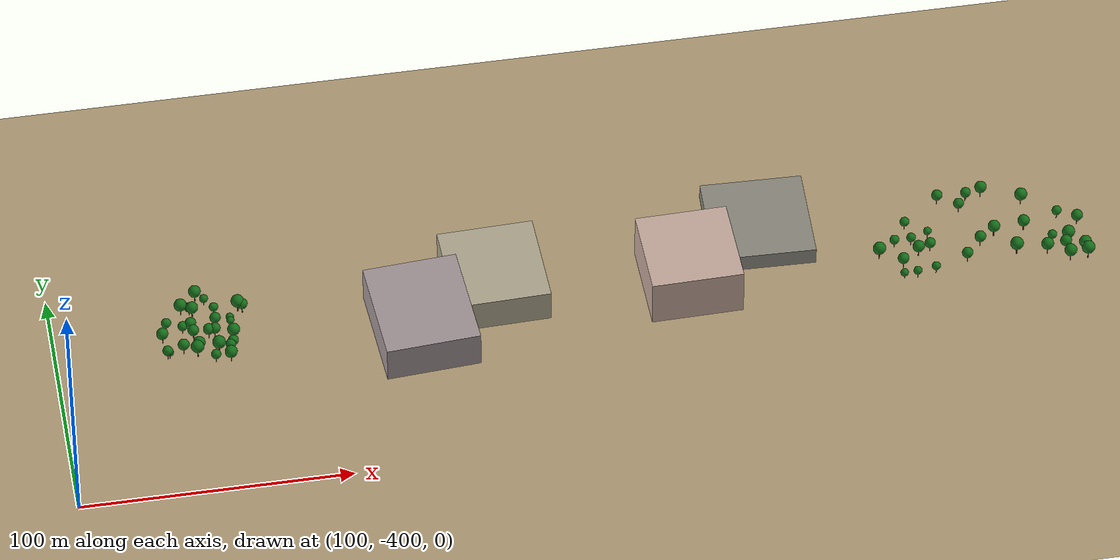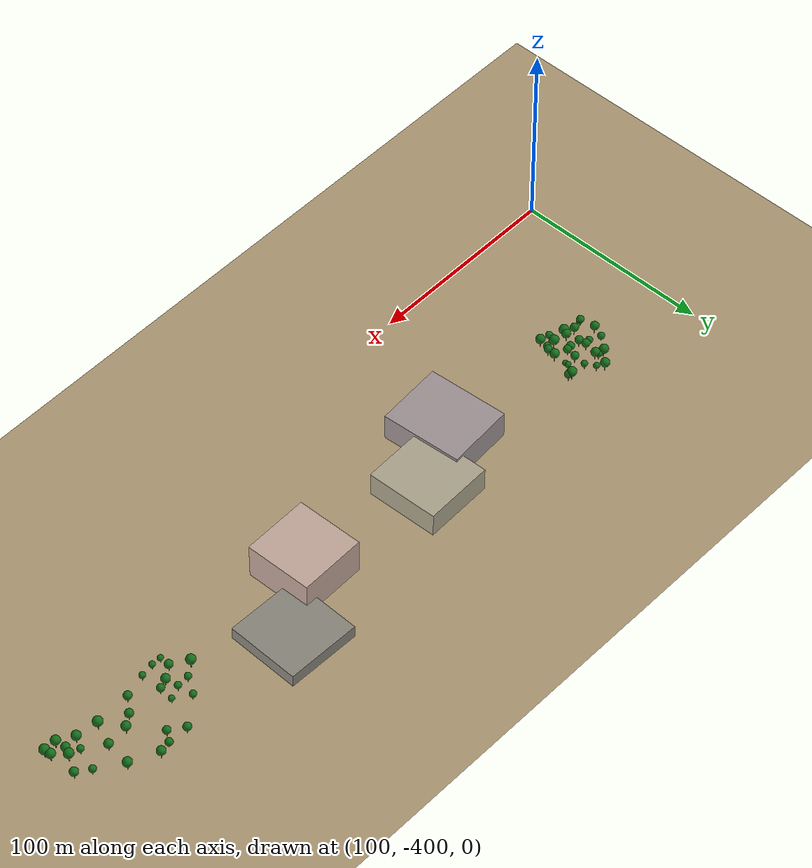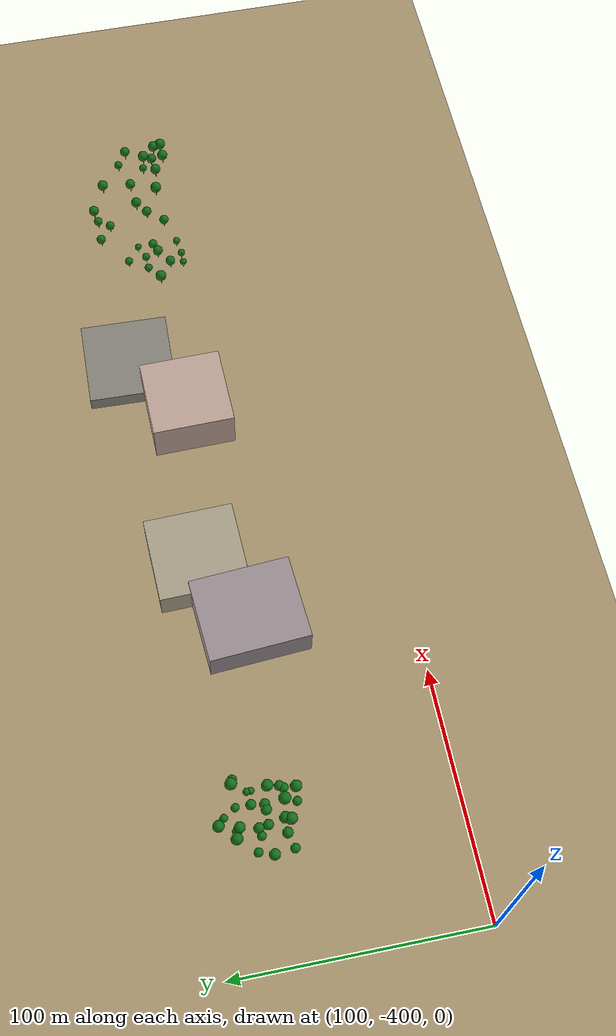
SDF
<sdf version="1.9">
 <world name="crossroad_world">
  <model name="ground_plane">
   <static>true</static>
   <pose>0 0 -0.05 0 0 0</pose>
   <link name="link">
    <collision name="collision">
     <geometry><plane><normal>0 0 1</normal><size>10000 10000</size></plane></geometry>
    </collision>
    <visual name="visual">
     <geometry><plane><normal>0 0 1</normal><size>15000 15000</size></plane></geometry>
     <material><ambient>0.68 0.60 0.45 1</ambient><diffuse>0.68 0.60 0.45 1</diffuse></material>
    </visual>
   </link>
  </model>
  <model name="tree_67">
   <static>true</static>
   <pose>474.937 -330.196 0 0 0 0</pose>
   <link name="link">
    <visual name="trunk">
     <pose>0 0 2.004 0 0 0</pose>
     <geometry><cylinder><radius>0.175</radius><length>4.008</length></cylinder></geometry>
     <material><ambient>0.38 0.22 0.08 1</ambient><diffuse>0.38 0.22 0.08 1</diffuse></material>
    </visual>
    <visual name="canopy">
     <pose>0 0 5.554 0 0 0</pose>
     <geometry><sphere><radius>2.380</radius></sphere></geometry>
     <material><ambient>0.08 0.44 0.10 1</ambient><diffuse>0.08 0.44 0.10 1</diffuse></material>
    </visual>
    <collision name="col">
     <pose>0 0 2.004 0 0 0</pose>
     <geometry><cylinder><radius>0.175</radius><length>4.008</length></cylinder></geometry>
    </collision>
   </link>
  </model>
  <model name="tree_68">
   <static>true</static>
   <pose>466.240 -334.672 0 0 0 0</pose>
   <link name="link">
    <visual name="trunk">
     <pose>0 0 1.931 0 0 0</pose>
     <geometry><cylinder><radius>0.169</radius><length>3.862</length></cylinder></geometry>
     <material><ambient>0.38 0.22 0.08 1</ambient><diffuse>0.38 0.22 0.08 1</diffuse></material>
    </visual>
    <visual name="canopy">
     <pose>0 0 5.352 0 0 0</pose>
     <geometry><sphere><radius>2.293</radius></sphere></geometry>
     <material><ambient>0.08 0.44 0.10 1</ambient><diffuse>0.08 0.44 0.10 1</diffuse></material>
    </visual>
    <collision name="col">
     <pose>0 0 1.931 0 0 0</pose>
     <geometry><cylinder><radius>0.169</radius><length>3.862</length></cylinder></geometry>
    </collision>
   </link>
  </model>
  <model name="tree_69">
   <static>true</static>
   <pose>469.174 -329.143 0 0 0 0</pose>
   <link name="link">
    <visual name="trunk">
     <pose>0 0 1.426 0 0 0</pose>
     <geometry><cylinder><radius>0.125</radius><length>2.852</length></cylinder></geometry>
     <material><ambient>0.38 0.22 0.08 1</ambient><diffuse>0.38 0.22 0.08 1</diffuse></material>
    </visual>
    <visual name="canopy">
     <pose>0 0 3.953 0 0 0</pose>
     <geometry><sphere><radius>1.694</radius></sphere></geometry>
     <material><ambient>0.08 0.44 0.10 1</ambient><diffuse>0.08 0.44 0.10 1</diffuse></material>
    </visual>
    <collision name="col">
     <pose>0 0 1.426 0 0 0</pose>
     <geometry><cylinder><radius>0.125</radius><length>2.852</length></cylinder></geometry>
    </collision>
   </link>
  </model>
  <model name="tree_70">
   <static>true</static>
   <pose>480.124 -335.793 0 0 0 0</pose>
   <link name="link">
    <visual name="trunk">
     <pose>0 0 1.926 0 0 0</pose>
     <geometry><cylinder><radius>0.169</radius><length>3.851</length></cylinder></geometry>
     <material><ambient>0.38 0.22 0.08 1</ambient><diffuse>0.38 0.22 0.08 1</diffuse></material>
    </visual>
    <visual name="canopy">
     <pose>0 0 5.338 0 0 0</pose>
     <geometry><sphere><radius>2.287</radius></sphere></geometry>
     <material><ambient>0.08 0.44 0.10 1</ambient><diffuse>0.08 0.44 0.10 1</diffuse></material>
    </visual>
    <collision name="col">
     <pose>0 0 1.926 0 0 0</pose>
     <geometry><cylinder><radius>0.169</radius><length>3.851</length></cylinder></geometry>
    </collision>
   </link>
  </model>
  <model name="tree_74">
   <static>true</static>
   <pose>473.034 -317.838 0 0 0 0</pose>
   <link name="link">
    <visual name="trunk">
     <pose>0 0 1.498 0 0 0</pose>
     <geometry><cylinder><radius>0.131</radius><length>2.996</length></cylinder></geometry>
     <material><ambient>0.38 0.22 0.08 1</ambient><diffuse>0.38 0.22 0.08 1</diffuse></material>
    </visual>
    <visual name="canopy">
     <pose>0 0 4.152 0 0 0</pose>
     <geometry><sphere><radius>1.779</radius></sphere></geometry>
     <material><ambient>0.08 0.44 0.10 1</ambient><diffuse>0.08 0.44 0.10 1</diffuse></material>
    </visual>
    <collision name="col">
     <pose>0 0 1.498 0 0 0</pose>
     <geometry><cylinder><radius>0.131</radius><length>2.996</length></cylinder></geometry>
    </collision>
   </link>
  </model>
  <model name="tree_78">
   <static>true</static>
   <pose>455.065 -333.043 0 0 0 0</pose>
   <link name="link">
    <visual name="trunk">
     <pose>0 0 2.051 0 0 0</pose>
     <geometry><cylinder><radius>0.179</radius><length>4.101</length></cylinder></geometry>
     <material><ambient>0.38 0.22 0.08 1</ambient><diffuse>0.38 0.22 0.08 1</diffuse></material>
    </visual>
    <visual name="canopy">
     <pose>0 0 5.684 0 0 0</pose>
     <geometry><sphere><radius>2.435</radius></sphere></geometry>
     <material><ambient>0.08 0.44 0.10 1</ambient><diffuse>0.08 0.44 0.10 1</diffuse></material>
    </visual>
    <collision name="col">
     <pose>0 0 2.051 0 0 0</pose>
     <geometry><cylinder><radius>0.179</radius><length>4.101</length></cylinder></geometry>
    </collision>
   </link>
  </model>
  <model name="tree_79">
   <static>true</static>
   <pose>473.966 -339.221 0 0 0 0</pose>
   <link name="link">
    <visual name="trunk">
     <pose>0 0 1.957 0 0 0</pose>
     <geometry><cylinder><radius>0.171</radius><length>3.914</length></cylinder></geometry>
     <material><ambient>0.38 0.22 0.08 1</ambient><diffuse>0.38 0.22 0.08 1</diffuse></material>
    </visual>
    <visual name="canopy">
     <pose>0 0 5.424 0 0 0</pose>
     <geometry><sphere><radius>2.324</radius></sphere></geometry>
     <material><ambient>0.08 0.44 0.10 1</ambient><diffuse>0.08 0.44 0.10 1</diffuse></material>
    </visual>
    <collision name="col">
     <pose>0 0 1.957 0 0 0</pose>
     <geometry><cylinder><radius>0.171</radius><length>3.914</length></cylinder></geometry>
    </collision>
   </link>
  </model>
  <model name="tree_80">
   <static>true</static>
   <pose>459.842 -321.681 0 0 0 0</pose>
   <link name="link">
    <visual name="trunk">
     <pose>0 0 1.837 0 0 0</pose>
     <geometry><cylinder><radius>0.161</radius><length>3.675</length></cylinder></geometry>
     <material><ambient>0.38 0.22 0.08 1</ambient><diffuse>0.38 0.22 0.08 1</diffuse></material>
    </visual>
    <visual name="canopy">
     <pose>0 0 5.093 0 0 0</pose>
     <geometry><sphere><radius>2.182</radius></sphere></geometry>
     <material><ambient>0.08 0.44 0.10 1</ambient><diffuse>0.08 0.44 0.10 1</diffuse></material>
    </visual>
    <collision name="col">
     <pose>0 0 1.837 0 0 0</pose>
     <geometry><cylinder><radius>0.161</radius><length>3.675</length></cylinder></geometry>
    </collision>
   </link>
  </model>
  <model name="tree_82">
   <static>true</static>
   <pose>480.581 -339.117 0 0 0 0</pose>
   <link name="link">
    <visual name="trunk">
     <pose>0 0 2.051 0 0 0</pose>
     <geometry><cylinder><radius>0.179</radius><length>4.102</length></cylinder></geometry>
     <material><ambient>0.38 0.22 0.08 1</ambient><diffuse>0.38 0.22 0.08 1</diffuse></material>
    </visual>
    <visual name="canopy">
     <pose>0 0 5.686 0 0 0</pose>
     <geometry><sphere><radius>2.436</radius></sphere></geometry>
     <material><ambient>0.08 0.44 0.10 1</ambient><diffuse>0.08 0.44 0.10 1</diffuse></material>
    </visual>
    <collision name="col">
     <pose>0 0 2.051 0 0 0</pose>
     <geometry><cylinder><radius>0.179</radius><length>4.102</length></cylinder></geometry>
    </collision>
   </link>
  </model>
  <model name="tree_89">
   <static>true</static>
   <pose>473.282 -333.863 0 0 0 0</pose>
   <link name="link">
    <visual name="trunk">
     <pose>0 0 1.792 0 0 0</pose>
     <geometry><cylinder><radius>0.157</radius><length>3.584</length></cylinder></geometry>
     <material><ambient>0.38 0.22 0.08 1</ambient><diffuse>0.38 0.22 0.08 1</diffuse></material>
    </visual>
    <visual name="canopy">
     <pose>0 0 4.967 0 0 0</pose>
     <geometry><sphere><radius>2.128</radius></sphere></geometry>
     <material><ambient>0.08 0.44 0.10 1</ambient><diffuse>0.08 0.44 0.10 1</diffuse></material>
    </visual>
    <collision name="col">
     <pose>0 0 1.792 0 0 0</pose>
     <geometry><cylinder><radius>0.157</radius><length>3.584</length></cylinder></geometry>
    </collision>
   </link>
  </model>
  <model name="tree_90">
   <static>true</static>
   <pose>479.800 -322.062 0 0 0 0</pose>
   <link name="link">
    <visual name="trunk">
     <pose>0 0 1.792 0 0 0</pose>
     <geometry><cylinder><radius>0.157</radius><length>3.583</length></cylinder></geometry>
     <material><ambient>0.38 0.22 0.08 1</ambient><diffuse>0.38 0.22 0.08 1</diffuse></material>
    </visual>
    <visual name="canopy">
     <pose>0 0 4.966 0 0 0</pose>
     <geometry><sphere><radius>2.128</radius></sphere></geometry>
     <material><ambient>0.08 0.44 0.10 1</ambient><diffuse>0.08 0.44 0.10 1</diffuse></material>
    </visual>
    <collision name="col">
     <pose>0 0 1.792 0 0 0</pose>
     <geometry><cylinder><radius>0.157</radius><length>3.583</length></cylinder></geometry>
    </collision>
   </link>
  </model>
  <model name="tree_91">
   <static>true</static>
   <pose>436.463 -333.862 0 0 0 0</pose>
   <link name="link">
    <visual name="trunk">
     <pose>0 0 1.730 0 0 0</pose>
     <geometry><cylinder><radius>0.151</radius><length>3.460</length></cylinder></geometry>
     <material><ambient>0.38 0.22 0.08 1</ambient><diffuse>0.38 0.22 0.08 1</diffuse></material>
    </visual>
    <visual name="canopy">
     <pose>0 0 4.796 0 0 0</pose>
     <geometry><sphere><radius>2.055</radius></sphere></geometry>
     <material><ambient>0.08 0.44 0.10 1</ambient><diffuse>0.08 0.44 0.10 1</diffuse></material>
    </visual>
    <collision name="col">
     <pose>0 0 1.730 0 0 0</pose>
     <geometry><cylinder><radius>0.151</radius><length>3.460</length></cylinder></geometry>
    </collision>
   </link>
  </model>
  <model name="tree_94">
   <static>true</static>
   <pose>424.090 -337.579 0 0 0 0</pose>
   <link name="link">
    <visual name="trunk">
     <pose>0 0 1.356 0 0 0</pose>
     <geometry><cylinder><radius>0.119</radius><length>2.712</length></cylinder></geometry>
     <material><ambient>0.38 0.22 0.08 1</ambient><diffuse>0.38 0.22 0.08 1</diffuse></material>
    </visual>
    <visual name="canopy">
     <pose>0 0 3.758 0 0 0</pose>
     <geometry><sphere><radius>1.610</radius></sphere></geometry>
     <material><ambient>0.08 0.44 0.10 1</ambient><diffuse>0.08 0.44 0.10 1</diffuse></material>
    </visual>
    <collision name="col">
     <pose>0 0 1.356 0 0 0</pose>
     <geometry><cylinder><radius>0.119</radius><length>2.712</length></cylinder></geometry>
    </collision>
   </link>
  </model>
  <model name="tree_95">
   <static>true</static>
   <pose>448.484 -322.743 0 0 0 0</pose>
   <link name="link">
    <visual name="trunk">
     <pose>0 0 1.880 0 0 0</pose>
     <geometry><cylinder><radius>0.165</radius><length>3.760</length></cylinder></geometry>
     <material><ambient>0.38 0.22 0.08 1</ambient><diffuse>0.38 0.22 0.08 1</diffuse></material>
    </visual>
    <visual name="canopy">
     <pose>0 0 5.211 0 0 0</pose>
     <geometry><sphere><radius>2.233</radius></sphere></geometry>
     <material><ambient>0.08 0.44 0.10 1</ambient><diffuse>0.08 0.44 0.10 1</diffuse></material>
    </visual>
    <collision name="col">
     <pose>0 0 1.880 0 0 0</pose>
     <geometry><cylinder><radius>0.165</radius><length>3.760</length></cylinder></geometry>
    </collision>
   </link>
  </model>
  <model name="tree_96">
   <static>true</static>
   <pose>423.887 -326.579 0 0 0 0</pose>
   <link name="link">
    <visual name="trunk">
     <pose>0 0 1.635 0 0 0</pose>
     <geometry><cylinder><radius>0.143</radius><length>3.270</length></cylinder></geometry>
     <material><ambient>0.38 0.22 0.08 1</ambient><diffuse>0.38 0.22 0.08 1</diffuse></material>
    </visual>
    <visual name="canopy">
     <pose>0 0 4.532 0 0 0</pose>
     <geometry><sphere><radius>1.941</radius></sphere></geometry>
     <material><ambient>0.08 0.44 0.10 1</ambient><diffuse>0.08 0.44 0.10 1</diffuse></material>
    </visual>
    <collision name="col">
     <pose>0 0 1.635 0 0 0</pose>
     <geometry><cylinder><radius>0.143</radius><length>3.270</length></cylinder></geometry>
    </collision>
   </link>
  </model>
  <model name="tree_97">
   <static>true</static>
   <pose>419.285 -328.193 0 0 0 0</pose>
   <link name="link">
    <visual name="trunk">
     <pose>0 0 1.864 0 0 0</pose>
     <geometry><cylinder><radius>0.163</radius><length>3.728</length></cylinder></geometry>
     <material><ambient>0.38 0.22 0.08 1</ambient><diffuse>0.38 0.22 0.08 1</diffuse></material>
    </visual>
    <visual name="canopy">
     <pose>0 0 5.167 0 0 0</pose>
     <geometry><sphere><radius>2.213</radius></sphere></geometry>
     <material><ambient>0.08 0.44 0.10 1</ambient><diffuse>0.08 0.44 0.10 1</diffuse></material>
    </visual>
    <collision name="col">
     <pose>0 0 1.864 0 0 0</pose>
     <geometry><cylinder><radius>0.163</radius><length>3.728</length></cylinder></geometry>
    </collision>
   </link>
  </model>
  <model name="tree_98">
   <static>true</static>
   <pose>447.421 -302.666 0 0 0 0</pose>
   <link name="link">
    <visual name="trunk">
     <pose>0 0 1.869 0 0 0</pose>
     <geometry><cylinder><radius>0.164</radius><length>3.737</length></cylinder></geometry>
     <material><ambient>0.38 0.22 0.08 1</ambient><diffuse>0.38 0.22 0.08 1</diffuse></material>
    </visual>
    <visual name="canopy">
     <pose>0 0 5.180 0 0 0</pose>
     <geometry><sphere><radius>2.219</radius></sphere></geometry>
     <material><ambient>0.08 0.44 0.10 1</ambient><diffuse>0.08 0.44 0.10 1</diffuse></material>
    </visual>
    <collision name="col">
     <pose>0 0 1.869 0 0 0</pose>
     <geometry><cylinder><radius>0.164</radius><length>3.737</length></cylinder></geometry>
    </collision>
   </link>
  </model>
  <model name="tree_100">
   <static>true</static>
   <pose>404.798 -327.288 0 0 0 0</pose>
   <link name="link">
    <visual name="trunk">
     <pose>0 0 2.013 0 0 0</pose>
     <geometry><cylinder><radius>0.176</radius><length>4.027</length></cylinder></geometry>
     <material><ambient>0.38 0.22 0.08 1</ambient><diffuse>0.38 0.22 0.08 1</diffuse></material>
    </visual>
    <visual name="canopy">
     <pose>0 0 5.580 0 0 0</pose>
     <geometry><sphere><radius>2.391</radius></sphere></geometry>
     <material><ambient>0.08 0.44 0.10 1</ambient><diffuse>0.08 0.44 0.10 1</diffuse></material>
    </visual>
    <collision name="col">
     <pose>0 0 2.013 0 0 0</pose>
     <geometry><cylinder><radius>0.176</radius><length>4.027</length></cylinder></geometry>
    </collision>
   </link>
  </model>
  <model name="tree_101">
   <static>true</static>
   <pose>430.835 -303.702 0 0 0 0</pose>
   <link name="link">
    <visual name="trunk">
     <pose>0 0 1.697 0 0 0</pose>
     <geometry><cylinder><radius>0.148</radius><length>3.394</length></cylinder></geometry>
     <material><ambient>0.38 0.22 0.08 1</ambient><diffuse>0.38 0.22 0.08 1</diffuse></material>
    </visual>
    <visual name="canopy">
     <pose>0 0 4.703 0 0 0</pose>
     <geometry><sphere><radius>2.015</radius></sphere></geometry>
     <material><ambient>0.08 0.44 0.10 1</ambient><diffuse>0.08 0.44 0.10 1</diffuse></material>
    </visual>
    <collision name="col">
     <pose>0 0 1.697 0 0 0</pose>
     <geometry><cylinder><radius>0.148</radius><length>3.394</length></cylinder></geometry>
    </collision>
   </link>
  </model>
  <model name="tree_102">
   <static>true</static>
   <pose>442.650 -326.736 0 0 0 0</pose>
   <link name="link">
    <visual name="trunk">
     <pose>0 0 1.759 0 0 0</pose>
     <geometry><cylinder><radius>0.154</radius><length>3.518</length></cylinder></geometry>
     <material><ambient>0.38 0.22 0.08 1</ambient><diffuse>0.38 0.22 0.08 1</diffuse></material>
    </visual>
    <visual name="canopy">
     <pose>0 0 4.876 0 0 0</pose>
     <geometry><sphere><radius>2.089</radius></sphere></geometry>
     <material><ambient>0.08 0.44 0.10 1</ambient><diffuse>0.08 0.44 0.10 1</diffuse></material>
    </visual>
    <collision name="col">
     <pose>0 0 1.759 0 0 0</pose>
     <geometry><cylinder><radius>0.154</radius><length>3.518</length></cylinder></geometry>
    </collision>
   </link>
  </model>
  <model name="tree_103">
   <static>true</static>
   <pose>412.751 -332.899 0 0 0 0</pose>
   <link name="link">
    <visual name="trunk">
     <pose>0 0 1.750 0 0 0</pose>
     <geometry><cylinder><radius>0.153</radius><length>3.499</length></cylinder></geometry>
     <material><ambient>0.38 0.22 0.08 1</ambient><diffuse>0.38 0.22 0.08 1</diffuse></material>
    </visual>
    <visual name="canopy">
     <pose>0 0 4.850 0 0 0</pose>
     <geometry><sphere><radius>2.078</radius></sphere></geometry>
     <material><ambient>0.08 0.44 0.10 1</ambient><diffuse>0.08 0.44 0.10 1</diffuse></material>
    </visual>
    <collision name="col">
     <pose>0 0 1.750 0 0 0</pose>
     <geometry><cylinder><radius>0.153</radius><length>3.499</length></cylinder></geometry>
    </collision>
   </link>
  </model>
  <model name="tree_104">
   <static>true</static>
   <pose>461.326 -308.824 0 0 0 0</pose>
   <link name="link">
    <visual name="trunk">
     <pose>0 0 1.961 0 0 0</pose>
     <geometry><cylinder><radius>0.172</radius><length>3.921</length></cylinder></geometry>
     <material><ambient>0.38 0.22 0.08 1</ambient><diffuse>0.38 0.22 0.08 1</diffuse></material>
    </visual>
    <visual name="canopy">
     <pose>0 0 5.434 0 0 0</pose>
     <geometry><sphere><radius>2.328</radius></sphere></geometry>
     <material><ambient>0.08 0.44 0.10 1</ambient><diffuse>0.08 0.44 0.10 1</diffuse></material>
    </visual>
    <collision name="col">
     <pose>0 0 1.961 0 0 0</pose>
     <geometry><cylinder><radius>0.172</radius><length>3.921</length></cylinder></geometry>
    </collision>
   </link>
  </model>
  <model name="tree_106">
   <static>true</static>
   <pose>417.069 -338.669 0 0 0 0</pose>
   <link name="link">
    <visual name="trunk">
     <pose>0 0 1.333 0 0 0</pose>
     <geometry><cylinder><radius>0.117</radius><length>2.666</length></cylinder></geometry>
     <material><ambient>0.38 0.22 0.08 1</ambient><diffuse>0.38 0.22 0.08 1</diffuse></material>
    </visual>
    <visual name="canopy">
     <pose>0 0 3.694 0 0 0</pose>
     <geometry><sphere><radius>1.583</radius></sphere></geometry>
     <material><ambient>0.08 0.44 0.10 1</ambient><diffuse>0.08 0.44 0.10 1</diffuse></material>
    </visual>
    <collision name="col">
     <pose>0 0 1.333 0 0 0</pose>
     <geometry><cylinder><radius>0.117</radius><length>2.666</length></cylinder></geometry>
    </collision>
   </link>
  </model>
  <model name="tree_107">
   <static>true</static>
   <pose>424.206 -319.774 0 0 0 0</pose>
   <link name="link">
    <visual name="trunk">
     <pose>0 0 1.260 0 0 0</pose>
     <geometry><cylinder><radius>0.110</radius><length>2.520</length></cylinder></geometry>
     <material><ambient>0.38 0.22 0.08 1</ambient><diffuse>0.38 0.22 0.08 1</diffuse></material>
    </visual>
    <visual name="canopy">
     <pose>0 0 3.493 0 0 0</pose>
     <geometry><sphere><radius>1.496</radius></sphere></geometry>
     <material><ambient>0.08 0.44 0.10 1</ambient><diffuse>0.08 0.44 0.10 1</diffuse></material>
    </visual>
    <collision name="col">
     <pose>0 0 1.260 0 0 0</pose>
     <geometry><cylinder><radius>0.110</radius><length>2.520</length></cylinder></geometry>
    </collision>
   </link>
  </model>
  <model name="tree_109">
   <static>true</static>
   <pose>411.318 -322.596 0 0 0 0</pose>
   <link name="link">
    <visual name="trunk">
     <pose>0 0 1.466 0 0 0</pose>
     <geometry><cylinder><radius>0.128</radius><length>2.933</length></cylinder></geometry>
     <material><ambient>0.38 0.22 0.08 1</ambient><diffuse>0.38 0.22 0.08 1</diffuse></material>
    </visual>
    <visual name="canopy">
     <pose>0 0 4.065 0 0 0</pose>
     <geometry><sphere><radius>1.741</radius></sphere></geometry>
     <material><ambient>0.08 0.44 0.10 1</ambient><diffuse>0.08 0.44 0.10 1</diffuse></material>
    </visual>
    <collision name="col">
     <pose>0 0 1.466 0 0 0</pose>
     <geometry><cylinder><radius>0.128</radius><length>2.933</length></cylinder></geometry>
    </collision>
   </link>
  </model>
  <model name="tree_110">
   <static>true</static>
   <pose>417.607 -322.422 0 0 0 0</pose>
   <link name="link">
    <visual name="trunk">
     <pose>0 0 1.442 0 0 0</pose>
     <geometry><cylinder><radius>0.126</radius><length>2.883</length></cylinder></geometry>
     <material><ambient>0.38 0.22 0.08 1</ambient><diffuse>0.38 0.22 0.08 1</diffuse></material>
    </visual>
    <visual name="canopy">
     <pose>0 0 3.996 0 0 0</pose>
     <geometry><sphere><radius>1.712</radius></sphere></geometry>
     <material><ambient>0.08 0.44 0.10 1</ambient><diffuse>0.08 0.44 0.10 1</diffuse></material>
    </visual>
    <collision name="col">
     <pose>0 0 1.442 0 0 0</pose>
     <geometry><cylinder><radius>0.126</radius><length>2.883</length></cylinder></geometry>
    </collision>
   </link>
  </model>
  <model name="tree_111">
   <static>true</static>
   <pose>412.078 -338.663 0 0 0 0</pose>
   <link name="link">
    <visual name="trunk">
     <pose>0 0 1.249 0 0 0</pose>
     <geometry><cylinder><radius>0.109</radius><length>2.499</length></cylinder></geometry>
     <material><ambient>0.38 0.22 0.08 1</ambient><diffuse>0.38 0.22 0.08 1</diffuse></material>
    </visual>
    <visual name="canopy">
     <pose>0 0 3.463 0 0 0</pose>
     <geometry><sphere><radius>1.484</radius></sphere></geometry>
     <material><ambient>0.08 0.44 0.10 1</ambient><diffuse>0.08 0.44 0.10 1</diffuse></material>
    </visual>
    <collision name="col">
     <pose>0 0 1.249 0 0 0</pose>
     <geometry><cylinder><radius>0.109</radius><length>2.499</length></cylinder></geometry>
    </collision>
   </link>
  </model>
  <model name="tree_112">
   <static>true</static>
   <pose>437.927 -308.888 0 0 0 0</pose>
   <link name="link">
    <visual name="trunk">
     <pose>0 0 1.646 0 0 0</pose>
     <geometry><cylinder><radius>0.144</radius><length>3.293</length></cylinder></geometry>
     <material><ambient>0.38 0.22 0.08 1</ambient><diffuse>0.38 0.22 0.08 1</diffuse></material>
    </visual>
    <visual name="canopy">
     <pose>0 0 4.564 0 0 0</pose>
     <geometry><sphere><radius>1.955</radius></sphere></geometry>
     <material><ambient>0.08 0.44 0.10 1</ambient><diffuse>0.08 0.44 0.10 1</diffuse></material>
    </visual>
    <collision name="col">
     <pose>0 0 1.646 0 0 0</pose>
     <geometry><cylinder><radius>0.144</radius><length>3.293</length></cylinder></geometry>
    </collision>
   </link>
  </model>
  <model name="tree_113">
   <static>true</static>
   <pose>416.630 -314.379 0 0 0 0</pose>
   <link name="link">
    <visual name="trunk">
     <pose>0 0 1.473 0 0 0</pose>
     <geometry><cylinder><radius>0.129</radius><length>2.946</length></cylinder></geometry>
     <material><ambient>0.38 0.22 0.08 1</ambient><diffuse>0.38 0.22 0.08 1</diffuse></material>
    </visual>
    <visual name="canopy">
     <pose>0 0 4.083 0 0 0</pose>
     <geometry><sphere><radius>1.749</radius></sphere></geometry>
     <material><ambient>0.08 0.44 0.10 1</ambient><diffuse>0.08 0.44 0.10 1</diffuse></material>
    </visual>
    <collision name="col">
     <pose>0 0 1.473 0 0 0</pose>
     <geometry><cylinder><radius>0.129</radius><length>2.946</length></cylinder></geometry>
    </collision>
   </link>
  </model>
  <model name="tree_114">
   <static>true</static>
   <pose>441.553 -303.826 0 0 0 0</pose>
   <link name="link">
    <visual name="trunk">
     <pose>0 0 1.598 0 0 0</pose>
     <geometry><cylinder><radius>0.140</radius><length>3.195</length></cylinder></geometry>
     <material><ambient>0.38 0.22 0.08 1</ambient><diffuse>0.38 0.22 0.08 1</diffuse></material>
    </visual>
    <visual name="canopy">
     <pose>0 0 4.429 0 0 0</pose>
     <geometry><sphere><radius>1.897</radius></sphere></geometry>
     <material><ambient>0.08 0.44 0.10 1</ambient><diffuse>0.08 0.44 0.10 1</diffuse></material>
    </visual>
    <collision name="col">
     <pose>0 0 1.598 0 0 0</pose>
     <geometry><cylinder><radius>0.140</radius><length>3.195</length></cylinder></geometry>
    </collision>
   </link>
  </model>
  <model name="tree_192">
   <static>true</static>
   <pose>160.026 -315.143 0 0 0 0</pose>
   <link name="link">
    <visual name="trunk">
     <pose>0 0 1.402 0 0 0</pose>
     <geometry><cylinder><radius>0.123</radius><length>2.805</length></cylinder></geometry>
     <material><ambient>0.38 0.22 0.08 1</ambient><diffuse>0.38 0.22 0.08 1</diffuse></material>
    </visual>
    <visual name="canopy">
     <pose>0 0 3.887 0 0 0</pose>
     <geometry><sphere><radius>1.665</radius></sphere></geometry>
     <material><ambient>0.08 0.44 0.10 1</ambient><diffuse>0.08 0.44 0.10 1</diffuse></material>
    </visual>
    <collision name="col">
     <pose>0 0 1.402 0 0 0</pose>
     <geometry><cylinder><radius>0.123</radius><length>2.805</length></cylinder></geometry>
    </collision>
   </link>
  </model>
  <model name="tree_193">
   <static>true</static>
   <pose>159.089 -326.249 0 0 0 0</pose>
   <link name="link">
    <visual name="trunk">
     <pose>0 0 1.701 0 0 0</pose>
     <geometry><cylinder><radius>0.149</radius><length>3.403</length></cylinder></geometry>
     <material><ambient>0.38 0.22 0.08 1</ambient><diffuse>0.38 0.22 0.08 1</diffuse></material>
    </visual>
    <visual name="canopy">
     <pose>0 0 4.716 0 0 0</pose>
     <geometry><sphere><radius>2.020</radius></sphere></geometry>
     <material><ambient>0.08 0.44 0.10 1</ambient><diffuse>0.08 0.44 0.10 1</diffuse></material>
    </visual>
    <collision name="col">
     <pose>0 0 1.701 0 0 0</pose>
     <geometry><cylinder><radius>0.149</radius><length>3.403</length></cylinder></geometry>
    </collision>
   </link>
  </model>
  <model name="tree_195">
   <static>true</static>
   <pose>159.835 -321.125 0 0 0 0</pose>
   <link name="link">
    <visual name="trunk">
     <pose>0 0 1.685 0 0 0</pose>
     <geometry><cylinder><radius>0.147</radius><length>3.369</length></cylinder></geometry>
     <material><ambient>0.38 0.22 0.08 1</ambient><diffuse>0.38 0.22 0.08 1</diffuse></material>
    </visual>
    <visual name="canopy">
     <pose>0 0 4.669 0 0 0</pose>
     <geometry><sphere><radius>2.000</radius></sphere></geometry>
     <material><ambient>0.08 0.44 0.10 1</ambient><diffuse>0.08 0.44 0.10 1</diffuse></material>
    </visual>
    <collision name="col">
     <pose>0 0 1.685 0 0 0</pose>
     <geometry><cylinder><radius>0.147</radius><length>3.369</length></cylinder></geometry>
    </collision>
   </link>
  </model>
  <model name="tree_196">
   <static>true</static>
   <pose>151.624 -334.930 0 0 0 0</pose>
   <link name="link">
    <visual name="trunk">
     <pose>0 0 2.030 0 0 0</pose>
     <geometry><cylinder><radius>0.178</radius><length>4.060</length></cylinder></geometry>
     <material><ambient>0.38 0.22 0.08 1</ambient><diffuse>0.38 0.22 0.08 1</diffuse></material>
    </visual>
    <visual name="canopy">
     <pose>0 0 5.628 0 0 0</pose>
     <geometry><sphere><radius>2.411</radius></sphere></geometry>
     <material><ambient>0.08 0.44 0.10 1</ambient><diffuse>0.08 0.44 0.10 1</diffuse></material>
    </visual>
    <collision name="col">
     <pose>0 0 2.030 0 0 0</pose>
     <geometry><cylinder><radius>0.178</radius><length>4.060</length></cylinder></geometry>
    </collision>
   </link>
  </model>
  <model name="tree_197">
   <static>true</static>
   <pose>147.651 -322.946 0 0 0 0</pose>
   <link name="link">
    <visual name="trunk">
     <pose>0 0 1.497 0 0 0</pose>
     <geometry><cylinder><radius>0.131</radius><length>2.994</length></cylinder></geometry>
     <material><ambient>0.38 0.22 0.08 1</ambient><diffuse>0.38 0.22 0.08 1</diffuse></material>
    </visual>
    <visual name="canopy">
     <pose>0 0 4.150 0 0 0</pose>
     <geometry><sphere><radius>1.778</radius></sphere></geometry>
     <material><ambient>0.08 0.44 0.10 1</ambient><diffuse>0.08 0.44 0.10 1</diffuse></material>
    </visual>
    <collision name="col">
     <pose>0 0 1.497 0 0 0</pose>
     <geometry><cylinder><radius>0.131</radius><length>2.994</length></cylinder></geometry>
    </collision>
   </link>
  </model>
  <model name="tree_198">
   <static>true</static>
   <pose>152.080 -315.365 0 0 0 0</pose>
   <link name="link">
    <visual name="trunk">
     <pose>0 0 1.872 0 0 0</pose>
     <geometry><cylinder><radius>0.164</radius><length>3.744</length></cylinder></geometry>
     <material><ambient>0.38 0.22 0.08 1</ambient><diffuse>0.38 0.22 0.08 1</diffuse></material>
    </visual>
    <visual name="canopy">
     <pose>0 0 5.188 0 0 0</pose>
     <geometry><sphere><radius>2.223</radius></sphere></geometry>
     <material><ambient>0.08 0.44 0.10 1</ambient><diffuse>0.08 0.44 0.10 1</diffuse></material>
    </visual>
    <collision name="col">
     <pose>0 0 1.872 0 0 0</pose>
     <geometry><cylinder><radius>0.164</radius><length>3.744</length></cylinder></geometry>
    </collision>
   </link>
  </model>
  <model name="tree_199">
   <static>true</static>
   <pose>164.967 -332.979 0 0 0 0</pose>
   <link name="link">
    <visual name="trunk">
     <pose>0 0 1.630 0 0 0</pose>
     <geometry><cylinder><radius>0.143</radius><length>3.260</length></cylinder></geometry>
     <material><ambient>0.38 0.22 0.08 1</ambient><diffuse>0.38 0.22 0.08 1</diffuse></material>
    </visual>
    <visual name="canopy">
     <pose>0 0 4.518 0 0 0</pose>
     <geometry><sphere><radius>1.936</radius></sphere></geometry>
     <material><ambient>0.08 0.44 0.10 1</ambient><diffuse>0.08 0.44 0.10 1</diffuse></material>
    </visual>
    <collision name="col">
     <pose>0 0 1.630 0 0 0</pose>
     <geometry><cylinder><radius>0.143</radius><length>3.260</length></cylinder></geometry>
    </collision>
   </link>
  </model>
  <model name="tree_204">
   <static>true</static>
   <pose>141.917 -320.539 0 0 0 0</pose>
   <link name="link">
    <visual name="trunk">
     <pose>0 0 1.510 0 0 0</pose>
     <geometry><cylinder><radius>0.132</radius><length>3.020</length></cylinder></geometry>
     <material><ambient>0.38 0.22 0.08 1</ambient><diffuse>0.38 0.22 0.08 1</diffuse></material>
    </visual>
    <visual name="canopy">
     <pose>0 0 4.185 0 0 0</pose>
     <geometry><sphere><radius>1.793</radius></sphere></geometry>
     <material><ambient>0.08 0.44 0.10 1</ambient><diffuse>0.08 0.44 0.10 1</diffuse></material>
    </visual>
    <collision name="col">
     <pose>0 0 1.510 0 0 0</pose>
     <geometry><cylinder><radius>0.132</radius><length>3.020</length></cylinder></geometry>
    </collision>
   </link>
  </model>
  <model name="tree_205">
   <static>true</static>
   <pose>157.025 -310.275 0 0 0 0</pose>
   <link name="link">
    <visual name="trunk">
     <pose>0 0 1.323 0 0 0</pose>
     <geometry><cylinder><radius>0.116</radius><length>2.646</length></cylinder></geometry>
     <material><ambient>0.38 0.22 0.08 1</ambient><diffuse>0.38 0.22 0.08 1</diffuse></material>
    </visual>
    <visual name="canopy">
     <pose>0 0 3.668 0 0 0</pose>
     <geometry><sphere><radius>1.571</radius></sphere></geometry>
     <material><ambient>0.08 0.44 0.10 1</ambient><diffuse>0.08 0.44 0.10 1</diffuse></material>
    </visual>
    <collision name="col">
     <pose>0 0 1.323 0 0 0</pose>
     <geometry><cylinder><radius>0.116</radius><length>2.646</length></cylinder></geometry>
    </collision>
   </link>
  </model>
  <model name="tree_210">
   <static>true</static>
   <pose>159.599 -334.067 0 0 0 0</pose>
   <link name="link">
    <visual name="trunk">
     <pose>0 0 2.042 0 0 0</pose>
     <geometry><cylinder><radius>0.179</radius><length>4.085</length></cylinder></geometry>
     <material><ambient>0.38 0.22 0.08 1</ambient><diffuse>0.38 0.22 0.08 1</diffuse></material>
    </visual>
    <visual name="canopy">
     <pose>0 0 5.661 0 0 0</pose>
     <geometry><sphere><radius>2.425</radius></sphere></geometry>
     <material><ambient>0.08 0.44 0.10 1</ambient><diffuse>0.08 0.44 0.10 1</diffuse></material>
    </visual>
    <collision name="col">
     <pose>0 0 2.042 0 0 0</pose>
     <geometry><cylinder><radius>0.179</radius><length>4.085</length></cylinder></geometry>
    </collision>
   </link>
  </model>
  <model name="tree_211">
   <static>true</static>
   <pose>170.463 -315.856 0 0 0 0</pose>
   <link name="link">
    <visual name="trunk">
     <pose>0 0 1.661 0 0 0</pose>
     <geometry><cylinder><radius>0.145</radius><length>3.322</length></cylinder></geometry>
     <material><ambient>0.38 0.22 0.08 1</ambient><diffuse>0.38 0.22 0.08 1</diffuse></material>
    </visual>
    <visual name="canopy">
     <pose>0 0 4.604 0 0 0</pose>
     <geometry><sphere><radius>1.973</radius></sphere></geometry>
     <material><ambient>0.08 0.44 0.10 1</ambient><diffuse>0.08 0.44 0.10 1</diffuse></material>
    </visual>
    <collision name="col">
     <pose>0 0 1.661 0 0 0</pose>
     <geometry><cylinder><radius>0.145</radius><length>3.322</length></cylinder></geometry>
    </collision>
   </link>
  </model>
  <model name="tree_212">
   <static>true</static>
   <pose>165.687 -328.472 0 0 0 0</pose>
   <link name="link">
    <visual name="trunk">
     <pose>0 0 1.938 0 0 0</pose>
     <geometry><cylinder><radius>0.170</radius><length>3.877</length></cylinder></geometry>
     <material><ambient>0.38 0.22 0.08 1</ambient><diffuse>0.38 0.22 0.08 1</diffuse></material>
    </visual>
    <visual name="canopy">
     <pose>0 0 5.373 0 0 0</pose>
     <geometry><sphere><radius>2.302</radius></sphere></geometry>
     <material><ambient>0.08 0.44 0.10 1</ambient><diffuse>0.08 0.44 0.10 1</diffuse></material>
    </visual>
    <collision name="col">
     <pose>0 0 1.938 0 0 0</pose>
     <geometry><cylinder><radius>0.170</radius><length>3.877</length></cylinder></geometry>
    </collision>
   </link>
  </model>
  <model name="tree_214">
   <static>true</static>
   <pose>154.042 -307.760 0 0 0 0</pose>
   <link name="link">
    <visual name="trunk">
     <pose>0 0 1.920 0 0 0</pose>
     <geometry><cylinder><radius>0.168</radius><length>3.840</length></cylinder></geometry>
     <material><ambient>0.38 0.22 0.08 1</ambient><diffuse>0.38 0.22 0.08 1</diffuse></material>
    </visual>
    <visual name="canopy">
     <pose>0 0 5.322 0 0 0</pose>
     <geometry><sphere><radius>2.280</radius></sphere></geometry>
     <material><ambient>0.08 0.44 0.10 1</ambient><diffuse>0.08 0.44 0.10 1</diffuse></material>
    </visual>
    <collision name="col">
     <pose>0 0 1.920 0 0 0</pose>
     <geometry><cylinder><radius>0.168</radius><length>3.840</length></cylinder></geometry>
    </collision>
   </link>
  </model>
  <model name="tree_215">
   <static>true</static>
   <pose>165.284 -320.542 0 0 0 0</pose>
   <link name="link">
    <visual name="trunk">
     <pose>0 0 1.243 0 0 0</pose>
     <geometry><cylinder><radius>0.109</radius><length>2.485</length></cylinder></geometry>
     <material><ambient>0.38 0.22 0.08 1</ambient><diffuse>0.38 0.22 0.08 1</diffuse></material>
    </visual>
    <visual name="canopy">
     <pose>0 0 3.445 0 0 0</pose>
     <geometry><sphere><radius>1.476</radius></sphere></geometry>
     <material><ambient>0.08 0.44 0.10 1</ambient><diffuse>0.08 0.44 0.10 1</diffuse></material>
    </visual>
    <collision name="col">
     <pose>0 0 1.243 0 0 0</pose>
     <geometry><cylinder><radius>0.109</radius><length>2.485</length></cylinder></geometry>
    </collision>
   </link>
  </model>
  <model name="tree_216">
   <static>true</static>
   <pose>141.506 -334.258 0 0 0 0</pose>
   <link name="link">
    <visual name="trunk">
     <pose>0 0 1.206 0 0 0</pose>
     <geometry><cylinder><radius>0.105</radius><length>2.411</length></cylinder></geometry>
     <material><ambient>0.38 0.22 0.08 1</ambient><diffuse>0.38 0.22 0.08 1</diffuse></material>
    </visual>
    <visual name="canopy">
     <pose>0 0 3.342 0 0 0</pose>
     <geometry><sphere><radius>1.432</radius></sphere></geometry>
     <material><ambient>0.08 0.44 0.10 1</ambient><diffuse>0.08 0.44 0.10 1</diffuse></material>
    </visual>
    <collision name="col">
     <pose>0 0 1.206 0 0 0</pose>
     <geometry><cylinder><radius>0.105</radius><length>2.411</length></cylinder></geometry>
    </collision>
   </link>
  </model>
  <model name="tree_219">
   <static>true</static>
   <pose>152.497 -332.780 0 0 0 0</pose>
   <link name="link">
    <visual name="trunk">
     <pose>0 0 1.889 0 0 0</pose>
     <geometry><cylinder><radius>0.165</radius><length>3.777</length></cylinder></geometry>
     <material><ambient>0.38 0.22 0.08 1</ambient><diffuse>0.38 0.22 0.08 1</diffuse></material>
    </visual>
    <visual name="canopy">
     <pose>0 0 5.235 0 0 0</pose>
     <geometry><sphere><radius>2.243</radius></sphere></geometry>
     <material><ambient>0.08 0.44 0.10 1</ambient><diffuse>0.08 0.44 0.10 1</diffuse></material>
    </visual>
    <collision name="col">
     <pose>0 0 1.889 0 0 0</pose>
     <geometry><cylinder><radius>0.165</radius><length>3.777</length></cylinder></geometry>
    </collision>
   </link>
  </model>
  <model name="tree_220">
   <static>true</static>
   <pose>157.924 -338.486 0 0 0 0</pose>
   <link name="link">
    <visual name="trunk">
     <pose>0 0 1.518 0 0 0</pose>
     <geometry><cylinder><radius>0.133</radius><length>3.036</length></cylinder></geometry>
     <material><ambient>0.38 0.22 0.08 1</ambient><diffuse>0.38 0.22 0.08 1</diffuse></material>
    </visual>
    <visual name="canopy">
     <pose>0 0 4.207 0 0 0</pose>
     <geometry><sphere><radius>1.802</radius></sphere></geometry>
     <material><ambient>0.08 0.44 0.10 1</ambient><diffuse>0.08 0.44 0.10 1</diffuse></material>
    </visual>
    <collision name="col">
     <pose>0 0 1.518 0 0 0</pose>
     <geometry><cylinder><radius>0.133</radius><length>3.036</length></cylinder></geometry>
    </collision>
   </link>
  </model>
  <model name="tree_221">
   <static>true</static>
   <pose>168.864 -315.154 0 0 0 0</pose>
   <link name="link">
    <visual name="trunk">
     <pose>0 0 2.031 0 0 0</pose>
     <geometry><cylinder><radius>0.178</radius><length>4.062</length></cylinder></geometry>
     <material><ambient>0.38 0.22 0.08 1</ambient><diffuse>0.38 0.22 0.08 1</diffuse></material>
    </visual>
    <visual name="canopy">
     <pose>0 0 5.629 0 0 0</pose>
     <geometry><sphere><radius>2.412</radius></sphere></geometry>
     <material><ambient>0.08 0.44 0.10 1</ambient><diffuse>0.08 0.44 0.10 1</diffuse></material>
    </visual>
    <collision name="col">
     <pose>0 0 2.031 0 0 0</pose>
     <geometry><cylinder><radius>0.178</radius><length>4.062</length></cylinder></geometry>
    </collision>
   </link>
  </model>
  <model name="tree_222">
   <static>true</static>
   <pose>139.818 -326.288 0 0 0 0</pose>
   <link name="link">
    <visual name="trunk">
     <pose>0 0 1.834 0 0 0</pose>
     <geometry><cylinder><radius>0.161</radius><length>3.669</length></cylinder></geometry>
     <material><ambient>0.38 0.22 0.08 1</ambient><diffuse>0.38 0.22 0.08 1</diffuse></material>
    </visual>
    <visual name="canopy">
     <pose>0 0 5.085 0 0 0</pose>
     <geometry><sphere><radius>2.178</radius></sphere></geometry>
     <material><ambient>0.08 0.44 0.10 1</ambient><diffuse>0.08 0.44 0.10 1</diffuse></material>
    </visual>
    <collision name="col">
     <pose>0 0 1.834 0 0 0</pose>
     <geometry><cylinder><radius>0.161</radius><length>3.669</length></cylinder></geometry>
    </collision>
   </link>
  </model>
  <model name="tree_224">
   <static>true</static>
   <pose>156.824 -326.466 0 0 0 0</pose>
   <link name="link">
    <visual name="trunk">
     <pose>0 0 1.743 0 0 0</pose>
     <geometry><cylinder><radius>0.152</radius><length>3.485</length></cylinder></geometry>
     <material><ambient>0.38 0.22 0.08 1</ambient><diffuse>0.38 0.22 0.08 1</diffuse></material>
    </visual>
    <visual name="canopy">
     <pose>0 0 4.830 0 0 0</pose>
     <geometry><sphere><radius>2.069</radius></sphere></geometry>
     <material><ambient>0.08 0.44 0.10 1</ambient><diffuse>0.08 0.44 0.10 1</diffuse></material>
    </visual>
    <collision name="col">
     <pose>0 0 1.743 0 0 0</pose>
     <geometry><cylinder><radius>0.152</radius><length>3.485</length></cylinder></geometry>
    </collision>
   </link>
  </model>
  <model name="tree_227">
   <static>true</static>
   <pose>165.322 -322.086 0 0 0 0</pose>
   <link name="link">
    <visual name="trunk">
     <pose>0 0 1.206 0 0 0</pose>
     <geometry><cylinder><radius>0.106</radius><length>2.412</length></cylinder></geometry>
     <material><ambient>0.38 0.22 0.08 1</ambient><diffuse>0.38 0.22 0.08 1</diffuse></material>
    </visual>
    <visual name="canopy">
     <pose>0 0 3.343 0 0 0</pose>
     <geometry><sphere><radius>1.432</radius></sphere></geometry>
     <material><ambient>0.08 0.44 0.10 1</ambient><diffuse>0.08 0.44 0.10 1</diffuse></material>
    </visual>
    <collision name="col">
     <pose>0 0 1.206 0 0 0</pose>
     <geometry><cylinder><radius>0.106</radius><length>2.412</length></cylinder></geometry>
    </collision>
   </link>
  </model>
  <model name="tree_229">
   <static>true</static>
   <pose>163.363 -339.158 0 0 0 0</pose>
   <link name="link">
    <visual name="trunk">
     <pose>0 0 1.941 0 0 0</pose>
     <geometry><cylinder><radius>0.170</radius><length>3.881</length></cylinder></geometry>
     <material><ambient>0.38 0.22 0.08 1</ambient><diffuse>0.38 0.22 0.08 1</diffuse></material>
    </visual>
    <visual name="canopy">
     <pose>0 0 5.379 0 0 0</pose>
     <geometry><sphere><radius>2.304</radius></sphere></geometry>
     <material><ambient>0.08 0.44 0.10 1</ambient><diffuse>0.08 0.44 0.10 1</diffuse></material>
    </visual>
    <collision name="col">
     <pose>0 0 1.941 0 0 0</pose>
     <geometry><cylinder><radius>0.170</radius><length>3.881</length></cylinder></geometry>
    </collision>
   </link>
  </model>
  <model name="tree_230">
   <static>true</static>
   <pose>151.061 -314.195 0 0 0 0</pose>
   <link name="link">
    <visual name="trunk">
     <pose>0 0 1.534 0 0 0</pose>
     <geometry><cylinder><radius>0.134</radius><length>3.069</length></cylinder></geometry>
     <material><ambient>0.38 0.22 0.08 1</ambient><diffuse>0.38 0.22 0.08 1</diffuse></material>
    </visual>
    <visual name="canopy">
     <pose>0 0 4.253 0 0 0</pose>
     <geometry><sphere><radius>1.822</radius></sphere></geometry>
     <material><ambient>0.08 0.44 0.10 1</ambient><diffuse>0.08 0.44 0.10 1</diffuse></material>
    </visual>
    <collision name="col">
     <pose>0 0 1.534 0 0 0</pose>
     <geometry><cylinder><radius>0.134</radius><length>3.069</length></cylinder></geometry>
    </collision>
   </link>
  </model>
  <model name="tree_231">
   <static>true</static>
   <pose>148.060 -313.644 0 0 0 0</pose>
   <link name="link">
    <visual name="trunk">
     <pose>0 0 1.959 0 0 0</pose>
     <geometry><cylinder><radius>0.171</radius><length>3.917</length></cylinder></geometry>
     <material><ambient>0.38 0.22 0.08 1</ambient><diffuse>0.38 0.22 0.08 1</diffuse></material>
    </visual>
    <visual name="canopy">
     <pose>0 0 5.429 0 0 0</pose>
     <geometry><sphere><radius>2.326</radius></sphere></geometry>
     <material><ambient>0.08 0.44 0.10 1</ambient><diffuse>0.08 0.44 0.10 1</diffuse></material>
    </visual>
    <collision name="col">
     <pose>0 0 1.959 0 0 0</pose>
     <geometry><cylinder><radius>0.171</radius><length>3.917</length></cylinder></geometry>
    </collision>
   </link>
  </model>
  <model name="tree_232">
   <static>true</static>
   <pose>163.893 -334.481 0 0 0 0</pose>
   <link name="link">
    <visual name="trunk">
     <pose>0 0 1.587 0 0 0</pose>
     <geometry><cylinder><radius>0.139</radius><length>3.175</length></cylinder></geometry>
     <material><ambient>0.38 0.22 0.08 1</ambient><diffuse>0.38 0.22 0.08 1</diffuse></material>
    </visual>
    <visual name="canopy">
     <pose>0 0 4.400 0 0 0</pose>
     <geometry><sphere><radius>1.885</radius></sphere></geometry>
     <material><ambient>0.08 0.44 0.10 1</ambient><diffuse>0.08 0.44 0.10 1</diffuse></material>
    </visual>
    <collision name="col">
     <pose>0 0 1.587 0 0 0</pose>
     <geometry><cylinder><radius>0.139</radius><length>3.175</length></cylinder></geometry>
    </collision>
   </link>
  </model>
  <model name="tree_233">
   <static>true</static>
   <pose>140.773 -334.241 0 0 0 0</pose>
   <link name="link">
    <visual name="trunk">
     <pose>0 0 1.579 0 0 0</pose>
     <geometry><cylinder><radius>0.138</radius><length>3.158</length></cylinder></geometry>
     <material><ambient>0.38 0.22 0.08 1</ambient><diffuse>0.38 0.22 0.08 1</diffuse></material>
    </visual>
    <visual name="canopy">
     <pose>0 0 4.377 0 0 0</pose>
     <geometry><sphere><radius>1.875</radius></sphere></geometry>
     <material><ambient>0.08 0.44 0.10 1</ambient><diffuse>0.08 0.44 0.10 1</diffuse></material>
    </visual>
    <collision name="col">
     <pose>0 0 1.579 0 0 0</pose>
     <geometry><cylinder><radius>0.138</radius><length>3.158</length></cylinder></geometry>
    </collision>
   </link>
  </model>
  <model name="tree_235">
   <static>true</static>
   <pose>146.834 -332.619 0 0 0 0</pose>
   <link name="link">
    <visual name="trunk">
     <pose>0 0 1.773 0 0 0</pose>
     <geometry><cylinder><radius>0.155</radius><length>3.546</length></cylinder></geometry>
     <material><ambient>0.38 0.22 0.08 1</ambient><diffuse>0.38 0.22 0.08 1</diffuse></material>
    </visual>
    <visual name="canopy">
     <pose>0 0 4.914 0 0 0</pose>
     <geometry><sphere><radius>2.105</radius></sphere></geometry>
     <material><ambient>0.08 0.44 0.10 1</ambient><diffuse>0.08 0.44 0.10 1</diffuse></material>
    </visual>
    <collision name="col">
     <pose>0 0 1.773 0 0 0</pose>
     <geometry><cylinder><radius>0.155</radius><length>3.546</length></cylinder></geometry>
    </collision>
   </link>
  </model>
  <model name="tree_236">
   <static>true</static>
   <pose>151.188 -326.088 0 0 0 0</pose>
   <link name="link">
    <visual name="trunk">
     <pose>0 0 1.723 0 0 0</pose>
     <geometry><cylinder><radius>0.151</radius><length>3.446</length></cylinder></geometry>
     <material><ambient>0.38 0.22 0.08 1</ambient><diffuse>0.38 0.22 0.08 1</diffuse></material>
    </visual>
    <visual name="canopy">
     <pose>0 0 4.776 0 0 0</pose>
     <geometry><sphere><radius>2.046</radius></sphere></geometry>
     <material><ambient>0.08 0.44 0.10 1</ambient><diffuse>0.08 0.44 0.10 1</diffuse></material>
    </visual>
    <collision name="col">
     <pose>0 0 1.723 0 0 0</pose>
     <geometry><cylinder><radius>0.151</radius><length>3.446</length></cylinder></geometry>
    </collision>
   </link>
  </model>
  <model name="tree_238">
   <static>true</static>
   <pose>150.598 -322.404 0 0 0 0</pose>
   <link name="link">
    <visual name="trunk">
     <pose>0 0 1.731 0 0 0</pose>
     <geometry><cylinder><radius>0.151</radius><length>3.462</length></cylinder></geometry>
     <material><ambient>0.38 0.22 0.08 1</ambient><diffuse>0.38 0.22 0.08 1</diffuse></material>
    </visual>
    <visual name="canopy">
     <pose>0 0 4.798 0 0 0</pose>
     <geometry><sphere><radius>2.055</radius></sphere></geometry>
     <material><ambient>0.08 0.44 0.10 1</ambient><diffuse>0.08 0.44 0.10 1</diffuse></material>
    </visual>
    <collision name="col">
     <pose>0 0 1.731 0 0 0</pose>
     <geometry><cylinder><radius>0.151</radius><length>3.462</length></cylinder></geometry>
    </collision>
   </link>
  </model>
  <model name="building_180">
   <static>true</static>
   <pose>363.237 -306.053 3.387 0 0 -0.028</pose>
   <link name="link">
    <visual name="body">
     <geometry><box><size>37.77 37.52 6.77</size></box></geometry>
     <material><ambient>0.54 0.53 0.49 1</ambient><diffuse>0.54 0.53 0.49 1</diffuse></material>
    </visual>
    <collision name="col"><geometry><box><size>37.77 37.52 6.77</size></box></geometry></collision>
   </link>
  </model>
  <model name="building_379">
   <static>true</static>
   <pose>333.872 -327.394 9.582 0 0 0.021</pose>
   <link name="link">
    <visual name="body">
     <geometry><box><size>33.91 34.24 19.16</size></box></geometry>
     <material><ambient>0.77 0.66 0.61 1</ambient><diffuse>0.77 0.66 0.61 1</diffuse></material>
    </visual>
    <collision name="col"><geometry><box><size>33.91 34.24 19.16</size></box></geometry></collision>
   </link>
  </model>
  <model name="building_616">
   <static>true</static>
   <pose>233.857 -335.120 7.321 0 0 0.071</pose>
   <link name="link">
    <visual name="body">
     <geometry><box><size>34.80 41.26 14.64</size></box></geometry>
     <material><ambient>0.63 0.58 0.59 1</ambient><diffuse>0.63 0.58 0.59 1</diffuse></material>
    </visual>
    <collision name="col"><geometry><box><size>34.80 41.26 14.64</size></box></geometry></collision>
   </link>
  </model>
  <model name="building_617">
   <static>true</static>
   <pose>262.959 -318.936 6.524 0 0 0.032</pose>
   <link name="link">
    <visual name="body">
     <geometry><box><size>35.56 36.90 13.05</size></box></geometry>
     <material><ambient>0.68 0.65 0.56 1</ambient><diffuse>0.68 0.65 0.56 1</diffuse></material>
    </visual>
    <collision name="col"><geometry><box><size>35.56 36.90 13.05</size></box></geometry></collision>
   </link>
  </model>
 </world>
</sdf>
